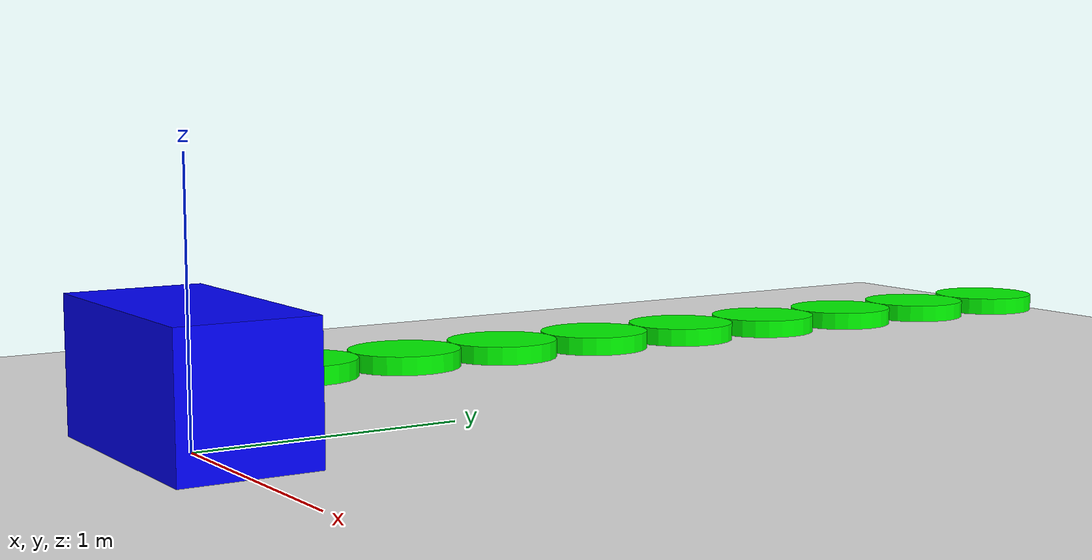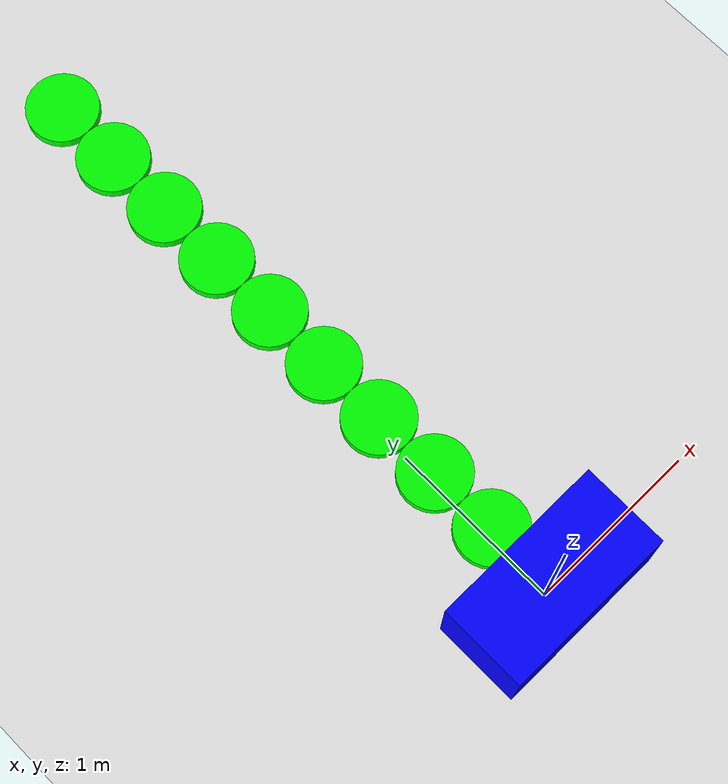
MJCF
<mujoco><worldbody><light diffuse=".5 .5 .5" pos="0 0 3" dir="0 0 -1" /><geom name="ground" type="plane" size="5 5 0.1" rgba=".9 .9 .9 1" /><body name="body"><freejoint name="root" /><geom name="torso" type="box" size="0.5 0.25 0.25" pos="0 0 0.25" rgba="0 0 1 1" mass="0.1" /><body name="wing0" pos="0 0.4 0.25" euler="0 0 90"><joint name="wing0link" type="hinge" axis="0 0 1" range="-1 1" /><geom name="wing0" type="cylinder" size="0.2 0.0325" pos="0 0 0" rgba="0 1 0 1" mass="1" /><body name="wing1" euler="0 0 0"><body name="wing2" euler="0 0 0"><body name="wing3" euler="0 0 0"><body name="wing4" euler="0 0 0"><body name="wing5" euler="0 0 0"><body name="wing6" euler="0 0 0"><body name="wing7" euler="0 0 0"><body name="wing8" euler="0 0 0" /><joint name="wing8link" type="hinge" pos="0 0 0" axis="1 0 0" range="-55 55" /><geom name="wing8" type="cylinder" size="0.2 0.0325" pos="3.2 0 0" rgba="0 1 0 1" mass="1.5" /></body><joint name="wing7link" type="hinge" pos="0 0 0" axis="1 0 0" range="-20 20" /><geom name="wing7" type="cylinder" size="0.2 0.0325" pos="2.8000000000000003 0 0" rgba="0 1 0 1" mass="1.5" /></body><joint name="wing6link" type="hinge" pos="0 0 0" axis="1 0 0" range="-77 77" /><geom name="wing6" type="cylinder" size="0.2 0.0325" pos="2.4000000000000004 0 0" rgba="0 1 0 1" mass="1.5" /></body><joint name="wing5link" type="hinge" pos="0 0 0" axis="1 0 0" range="-53 53" /><geom name="wing5" type="cylinder" size="0.2 0.0325" pos="2.0 0 0" rgba="0 1 0 1" mass="1.5" /></body><joint name="wing4link" type="hinge" pos="0 0 0" axis="1 0 0" range="-44 44" /><geom name="wing4" type="cylinder" size="0.2 0.0325" pos="1.6 0 0" rgba="0 1 0 1" mass="1.5" /></body><joint name="wing3link" type="hinge" pos="0 0 0" axis="1 0 0" range="-33 33" /><geom name="wing3" type="cylinder" size="0.2 0.0325" pos="1.2000000000000002 0 0" rgba="0 1 0 1" mass="1.5" /></body><joint name="wing2link" type="hinge" pos="0 0 0" axis="1 0 0" range="-1 1" /><geom name="wing2" type="cylinder" size="0.2 0.0325" pos="0.8 0 0" rgba="0 1 0 1" mass="1.5" /></body><joint name="wing1link" type="hinge" pos="0 0 0" axis="1 0 0" range="-92 92" /><geom name="wing1" type="cylinder" size="0.2 0.0325" pos="0.4 0 0" rgba="0 1 0 1" mass="1.5" /></body></body></worldbody><actuator><motor name="wing0m" joint="wing0link" gear="79" ctrllimited="true" ctrlrange="-5 5" /><motor name="wing1m" joint="wing1link" gear="29" ctrllimited="true" ctrlrange="-5 5" /><motor name="wing2m" joint="wing2link" gear="80" ctrllimited="true" ctrlrange="-5 5" /><motor name="wing3m" joint="wing3link" gear="59" ctrllimited="true" ctrlrange="-5 5" /><motor name="wing4m" joint="wing4link" gear="43" ctrllimited="true" ctrlrange="-5 5" /><motor name="wing5m" joint="wing5link" gear="79" ctrllimited="true" ctrlrange="-5 5" /><motor name="wing6m" joint="wing6link" gear="76" ctrllimited="true" ctrlrange="-5 5" /><motor name="wing7m" joint="wing7link" gear="71" ctrllimited="true" ctrlrange="-5 5" /><motor name="wing8m" joint="wing8link" gear="2" ctrllimited="true" ctrlrange="-5 5" /></actuator></mujoco>
